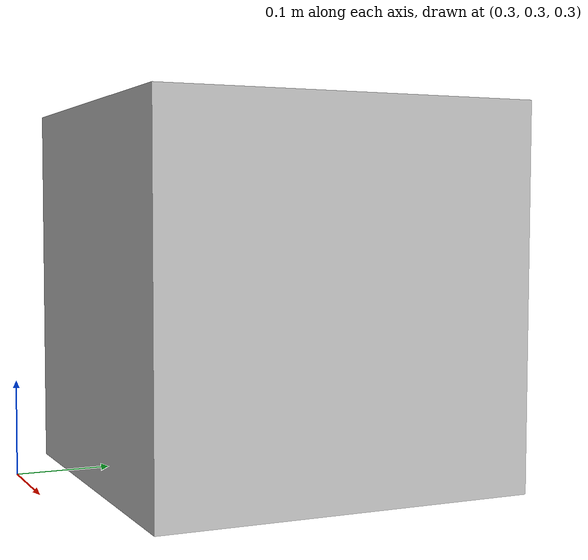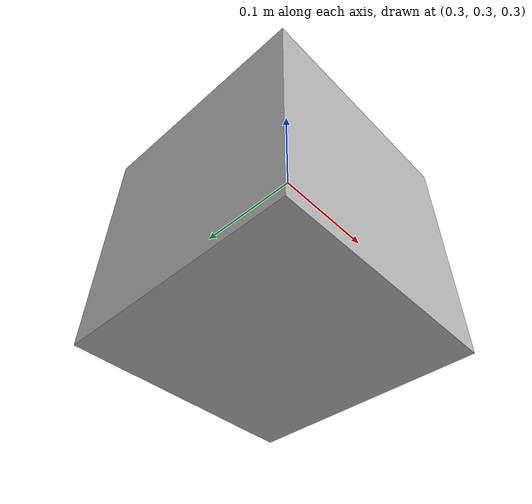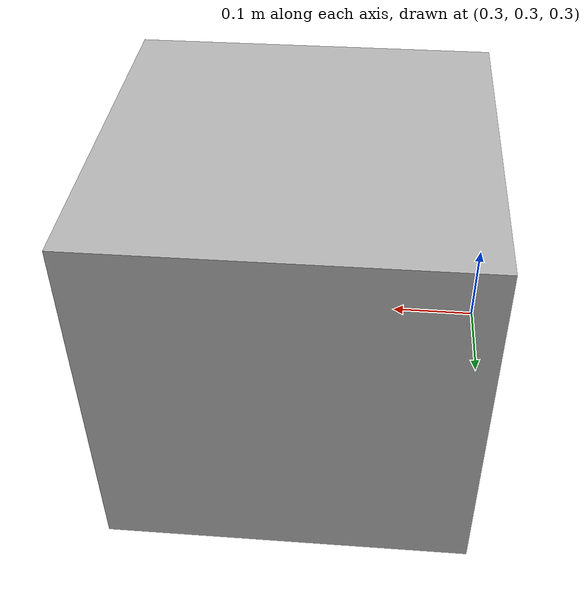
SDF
<?xml version='1.0'?>
<sdf version="1.4">
    <model name="obstacle_box_large">
        <pose>0.5 0.5 0.5 0 0 0</pose>
        <static>true</static>
        <link name="obstacle_large_link">
            <inertial>
                <mass>5.0</mass>
                <inertia>
                    <ixx>0.101675</ixx>       <!-- for a box: ixx = 0.083 * mass * (y*y + z*z) -->
                    <ixy>0.0</ixy>            <!-- for a box: ixy = 0 -->
                    <ixz>0.0</ixz>            <!-- for a box: ixz = 0 -->
                    <iyy>0.101675</iyy>       <!-- for a box: iyy = 0.083 * mass * (x*x + z*z) -->
                    <iyz>0.0</iyz>            <!-- for a box: iyz = 0 -->
                    <izz>0.101675</izz>       <!-- for a box: izz = 0.083 * mass * (x*x + y*y) -->
                </inertia>
            </inertial>
            <collision name="obstacle_large_collision">
                <geometry>
                    <box>
                        <size>0.35 0.35 0.35</size>
                    </box>
                </geometry>
            </collision>
            <visual name="obstacle_large_visual">
                <geometry>
                    <box>
                        <size>0.35 0.35 0.35</size>
                    </box>
                </geometry>
            </visual>
            <sensor name="obstacle_large_contact_sensor" type="contact">
                <contact>
                    <collision>obstacle_large_collision</collision>
                    <topic>/obstacle_large_contact</topic>
                </contact>
                <always_on>1</always_on>
                <update_rate>5</update_rate>
            </sensor>
        </link>
    </model>
</sdf>
